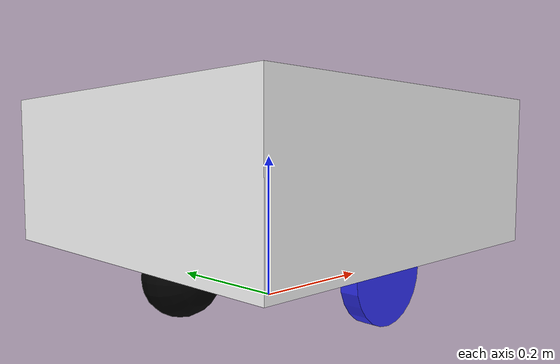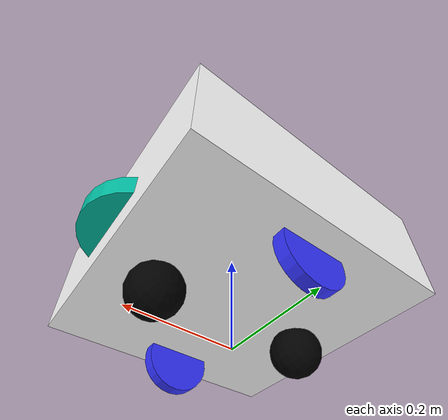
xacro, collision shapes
<?xml version="1.0"?>
<robot xmlns:xacro="http://www.ros.org/wiki/xacro" name="robot">

    <xacro:include filename="robot_core.xacro"/>
    <xacro:include filename="ros2_control.xacro"/>
    <xacro:include filename="lidar.xacro"/>
    <xacro:include filename="imu.xacro"/>
    <xacro:include filename="gps.xacro"/>
</robot>

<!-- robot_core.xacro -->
<robot name="sentinel_robot" xmlns:xacro="http://www.ros.org/wiki/xacro">

    <xacro:include filename="inertial_macros.xacro"/>

    <material name="white">
        <color rgba="1 1 1 1"/>
    </material>
    <material name="orange">
        <color rgba="1 0.3 0.1 1"/>
    </material>
    <material name="blue">
        <color rgba="0.2 0.2 1 1"/>
    </material>
    <material name="black">
        <color rgba="0 0 0 1"/>
    </material>
    <material name="red">
        <color rgba="1 0 0 1"/>
    </material>
    <material name="green_tosca">
        <color rgba="0.0 0.7 0.6 1"/>
    </material>

    <material name="pink">
        <color rgba="1.0 0.4 0.7 1"/>
    </material>

    <material name="gray">
        <color rgba="0.6 0.6 0.6 1"/>
    </material>

    <!-- BASE LINK -->

    <link name="base_link">
    </link>

    <!-- BASE FOOTPRINT     -->
    <joint name="base_footprint_joint" type="fixed">
        <parent link="base_link"/>
        <child link="base_footprint"/>
        <origin xyz="0 0 0" rpy="0 0 0"/>
    </joint>

    <link name="base_footprint">
    </link>

    <!-- CHASSIS LINK  -->
    <joint name="chassis_joint" type="fixed">
        <parent link="base_link"/>
        <child link="chassis"/>
        <origin xyz="0.0 0.0 0.0"/>
    </joint>

    <link name="chassis">
        <visual>
            <origin xyz="0.0 0.0 0.1" rpy="0.0 0.0 0.0"/>
            <geometry>
                <box size="0.426 0.30 0.1"/>
            </geometry>
            <material name="white"/>
        </visual>
        <collision>
            <origin xyz="0.0 0.0 0.18" rpy="0.0 0.0 0.0"/>
            <geometry>
                <box size="0.5 0.5 0.2"/>
            </geometry>
        </collision>
        <xacro:inertial_box mass="0.5" x="0.06" y="0.6" z="0.3">
            <origin xyz="0.0 0.0 0.0" rpy="0.0 0.0 0.0"/>
        </xacro:inertial_box>
    </link>
    <gazebo reference="chassis">
        <material>
            Gazebo/White
        </material>
    </gazebo>

    <!-- LEFT WHEEL -->
    <joint name="left_wheel_joint" type="continuous">
        <parent link="base_link"/>
        <child link="left_wheel"/>
        <origin xyz="0.0 0.180 0.063" rpy="0 0 0"/>
        <axis xyz="0.0 1.0 0.0"/>
    </joint>

    <link name="left_wheel">
        <visual>
            <geometry>
                <mesh filename="package://outdoor_amr/meshes/left_wheel.stl" scale="0.001 0.001 0.001"/>
            </geometry>
            <material name="blue"/>
        </visual>
        <collision>
            <origin xyz="0 0.0125 0" rpy="1.5708 0 0"/>
            <geometry>
                <cylinder radius="0.0635" length="0.024"/>
            </geometry>
        </collision>
        <xacro:inertial_cylinder mass="0.1" length="0.024" radius="0.0635">
            <origin xyz="0 0 0" rpy="0 0 0"/>
        </xacro:inertial_cylinder>
    </link>
    <gazebo reference="left_wheel">
        <material>
            Gazebo/Blue
        </material>
    </gazebo>

    <!-- RIGHT WHEEL -->
    <joint name="right_wheel_joint" type="continuous">
        <parent link="base_link"/>
        <child link="right_wheel"/>
        <origin xyz="0.0 -0.180 0.063" rpy="0 0 0"/>
        <axis xyz="0.0 1.0 0.0"/>
    </joint>

    <link name="right_wheel">
        <visual>
            <origin rpy="0 0 3.14159"/>
            <geometry>
                <mesh filename="package://outdoor_amr/meshes/right_wheel.stl" scale="0.001 0.001 0.001"/>
            </geometry>
            <material name="blue"/>
        </visual>
        <collision>
            <origin xyz="0 -0.0125 0" rpy="1.5708 0 0"/>
            <geometry>
                <cylinder radius="0.0635" length="0.024"/>
            </geometry>
        </collision>
        <xacro:inertial_cylinder mass="0.1" length="0.024" radius="0.0635">
            <origin xyz="0 0 0" rpy="0 0 0"/>
        </xacro:inertial_cylinder>
    </link>
    <gazebo reference="right_wheel">
        <material>
            Gazebo/Blue
        </material>
    </gazebo>

    <!-- CASTER WHEEL REAR LINK -->
    <joint name="rear_caster_wheel_joint" type="fixed">
        <parent link="chassis"/>
        <child link="rear_caster_wheel"/>
        <origin xyz="0.116 0.0 0.052"/>
    </joint>
    <link name="rear_caster_wheel">
        <visual>
            <geometry>
                <mesh filename="package://outdoor_amr/meshes/front_caster.stl" scale="0.001 0.001 0.001"/>
            </geometry>
            <material name="black"/>
        </visual>
        <collision>
            <origin xyz="0.038 0.0 -0.002" rpy="1.5708 0 0"/>
            <geometry>
                <sphere radius="0.05"/>
            </geometry>
        </collision>
        <xacro:inertial_sphere mass="0.1" radius="0.05">
            <origin xyz="0.0 0.0 0.0" rpy="0.0 0.0 0.0"/>
        </xacro:inertial_sphere>
    </link>
    <gazebo reference="rear_caster_wheel">
        <material>
            Gazebo/Black
        </material>
    </gazebo>

    <!-- CASTER WHEEL BACK LINK  -->
    <joint name="back_caster_wheel_joint" type="fixed">
        <parent link="chassis"/>
        <child link="back_caster_wheel"/>
        <origin xyz="-0.116 0.0 0.052" rpy="0 0 3.14"/>
    </joint>
    <link name="back_caster_wheel">
        <visual>
            <geometry>
                <mesh filename="package://outdoor_amr/meshes/back_caster.stl" scale="0.001 0.001 0.001"/>
            </geometry>
            <material name="black"/>
        </visual>
        <collision>
            <origin xyz="0.038 0.0 -0.002" rpy="1.5708 0 0"/>
            <geometry>
                <sphere radius="0.05"/>
            </geometry>
        </collision>
        <xacro:inertial_sphere mass="0.1" radius="0.05">
            <origin xyz="0.0 0.0 0.0" rpy="0.0 0.0 0.0"/>
        </xacro:inertial_sphere>
    </link>
    <gazebo reference="back_caster_wheel">
        <material>
            Gazebo/Black
        </material>
        <mu1 value="0.001"></mu1>
        <mu2 value="0.001"></mu2>
    </gazebo>

</robot>

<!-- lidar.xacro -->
<robot xmlns:xacro="http://www.ros.org/wiki/xacro">
  <xacro:include filename="inertial_macros.xacro"/>

  <joint name="laser_joint" type="fixed">
    <parent link="chassis"/>
    <child link="laser_frame"/>
    <origin xyz="0.113 0 0.15" rpy="0 0 0"/>
  </joint>

  <link name="laser_frame">
  <visual>
    <geometry>
      <mesh filename="package://outdoor_amr/meshes/rplidar.stl" scale="0.001 0.001 0.001"/>
    </geometry>
    <material name="red"/>
  </visual>

  <collision>
    <geometry>
      <cylinder radius="0.05" length="0.04"/>
    </geometry>
  </collision>

  <xacro:inertial_cylinder mass="0.001" length="0.04" radius="0.05">
    <origin xyz="0 0 0" rpy="0 0 0"/>
  </xacro:inertial_cylinder>
  </link>

  <!-- Gazebo Harmonic native lidar -->
  <gazebo reference="laser_frame">
      <sensor name="gpu_lidar" type="gpu_lidar">
      <pose relative_to="laser_frame">0 0 0.03 0 0 0</pose>

      <topic>/scan</topic>
      <update_rate>10</update_rate>

        <lidar>
          <scan>
            <horizontal>
              <samples>720</samples>
              <resolution>1</resolution>
              <min_angle>-3.1459</min_angle>
              <max_angle>3.1459</max_angle>
            </horizontal>
          </scan>
          <range>
            <min>0.01</min>
            <max>12</max>
            <resolution>0.005</resolution>
          </range>
          <noise>
            <type>gaussian</type>
            <mean>0</mean>
            <stddev>0.001</stddev>
          </noise>
        </lidar>

        <gz_frame_id>laser_frame</gz_frame_id>
        <visualize>true</visualize>
        <always_on>1</always_on>
      </sensor>
  </gazebo>

</robot>

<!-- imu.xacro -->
<robot xmlns:xacro="http://www.ros.org/wiki/xacro" >

    <joint name="imu_joint" type="fixed">
        <origin xyz="0.0 0 0.155" rpy="0 0 0"/>
        <parent link="chassis"/>
        <child link="imu_link"/>
    </joint>

    <link name="imu_link">
        <visual>
            <origin xyz="0 0 0" rpy="0 0 1.5708"/>
            <geometry>
                <box size="0.01 0.01 0.005"/>
            </geometry>
            <material name="blue"/>
        </visual>
        <collision>
            <geometry>
                <cylinder radius="0.05" length="0.04"/>
            </geometry>
        </collision>
        <xacro:inertial_cylinder mass="0.001" length="0.04" radius="0.05">
            <origin xyz="0 0 0" rpy="0 0 0"/>
        </xacro:inertial_cylinder>
    </link>

    <gazebo reference="imu_link">
        <sensor name="imu" type="imu">
        <always_on>1</always_on>
        <update_rate>50</update_rate>
        <visualize>true</visualize>
        <topic>/imu</topic>
        <enable_metrics>true</enable_metrics>
        <gz_frame_id>imu_link</gz_frame_id>
        </sensor>
    </gazebo>

</robot>

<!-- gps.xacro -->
<robot xmlns:xacro="http://www.ros.org/wiki/xacro" >

    <joint name="gps_joint" type="fixed">
        <origin xyz="0.2 0 0.155" rpy="0 0 0"/>
        <parent link="chassis"/>
        <child link="gps_link"/>
    </joint>

    <link name="gps_link">
        <visual>
            <origin xyz="0 0 0" rpy="0 0 1.5708"/>
            <geometry>
                <box size="0.02 0.02 0.005"/>
            </geometry>
            <material name="green_tosca"/>
        </visual>
        <collision>
            <geometry>
                <cylinder radius="0.1" length="0.04"/>
            </geometry>
        </collision>
        <xacro:inertial_cylinder mass="0.001" length="0.04" radius="0.05">
            <origin xyz="0 0 0" rpy="0 0 0"/>
        </xacro:inertial_cylinder>
    </link>

    <gazebo reference="gps_link">
        <sensor name="navsat" type="navsat">
            <always_on>true</always_on>
            <update_rate>1</update_rate>
            <topic>/gps/fix</topic>
            <gz_frame_id>gps_link</gz_frame_id>
            <navsat>
            <position_sensing>
                <horizontal>
                <noise type="gaussian">
                    <mean>0.0</mean>
                    <stddev>0.0</stddev>
                </noise>
                </horizontal>
                <vertical>
                <noise type="gaussian">
                    <mean>0.0</mean>
                    <stddev>0.0</stddev>
                </noise>
                </vertical>
            </position_sensing>
            </navsat>
        </sensor>
    </gazebo>

</robot>
